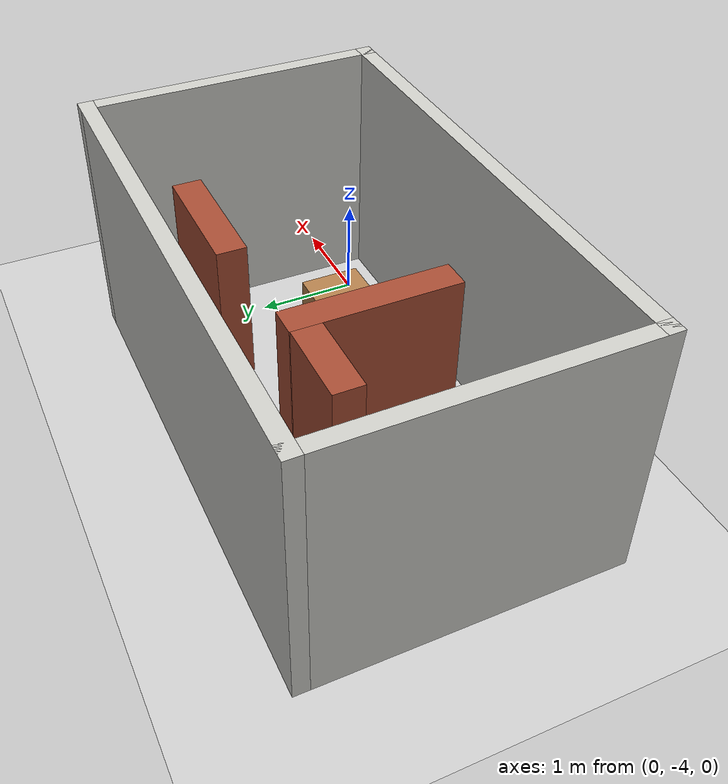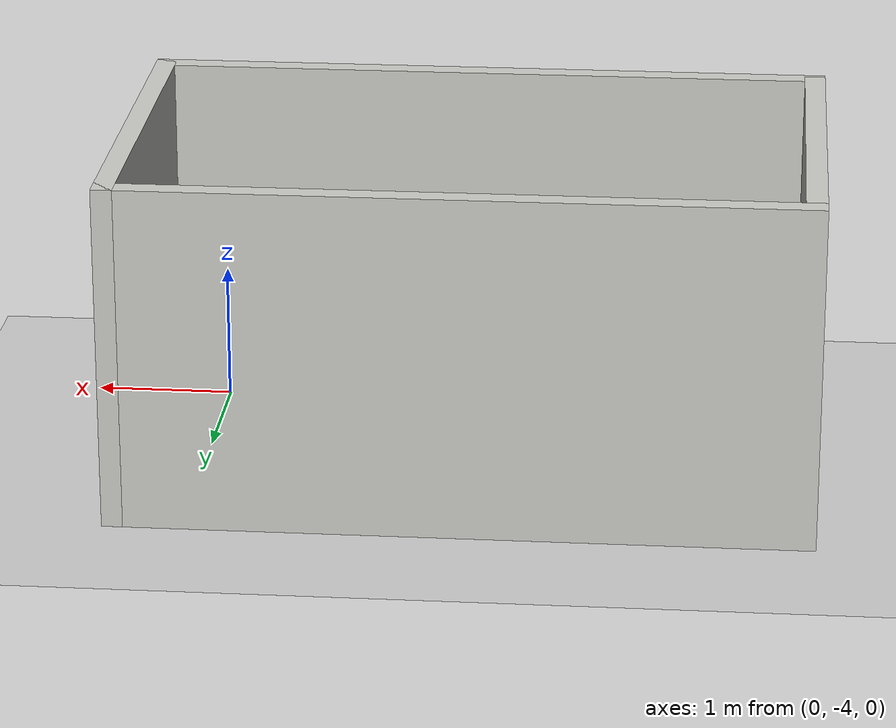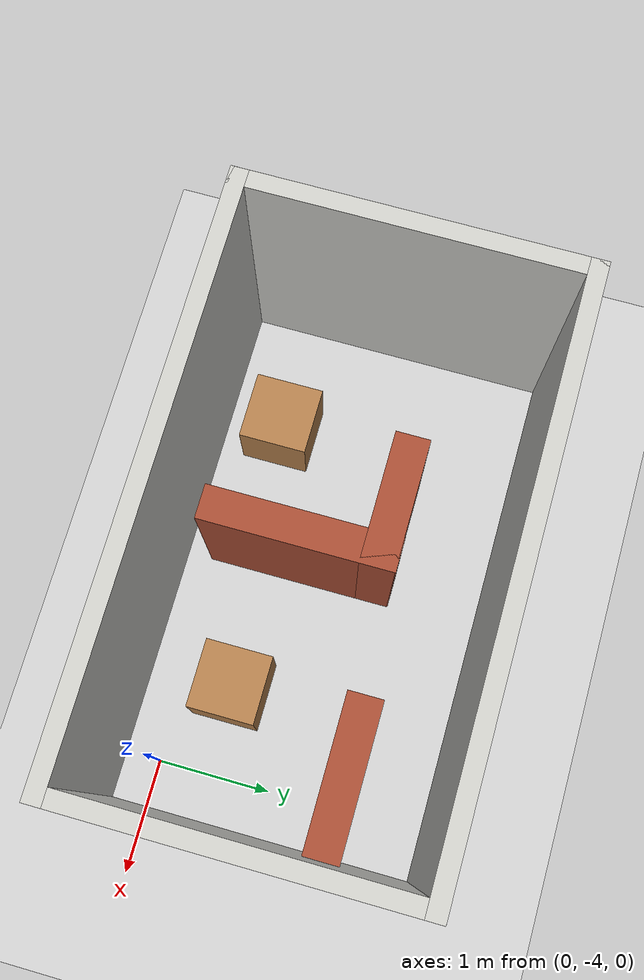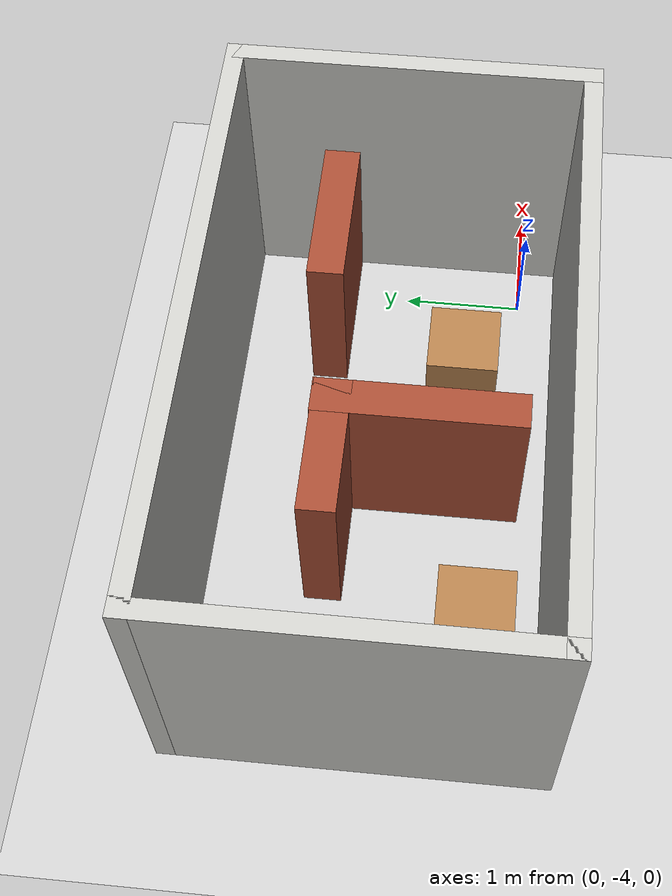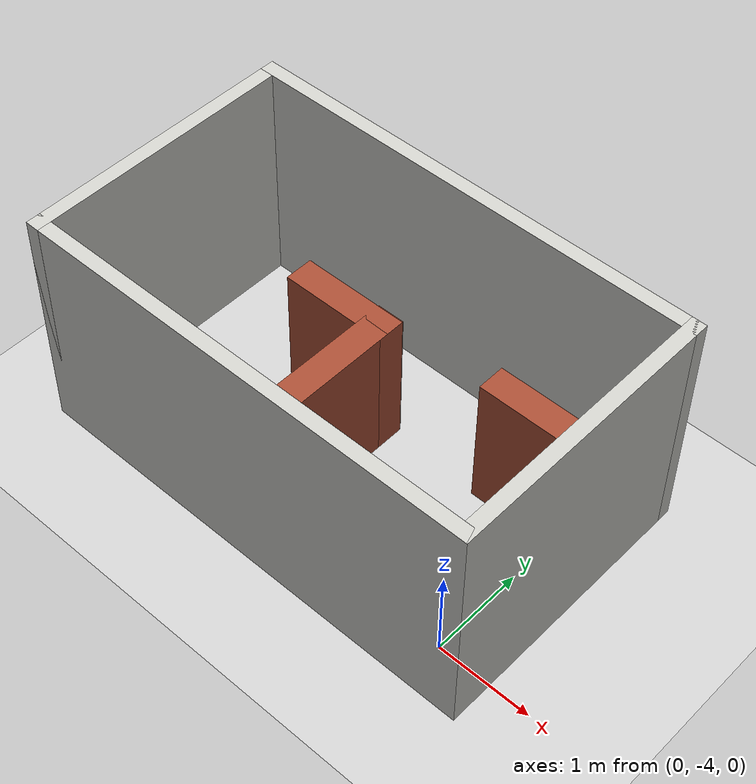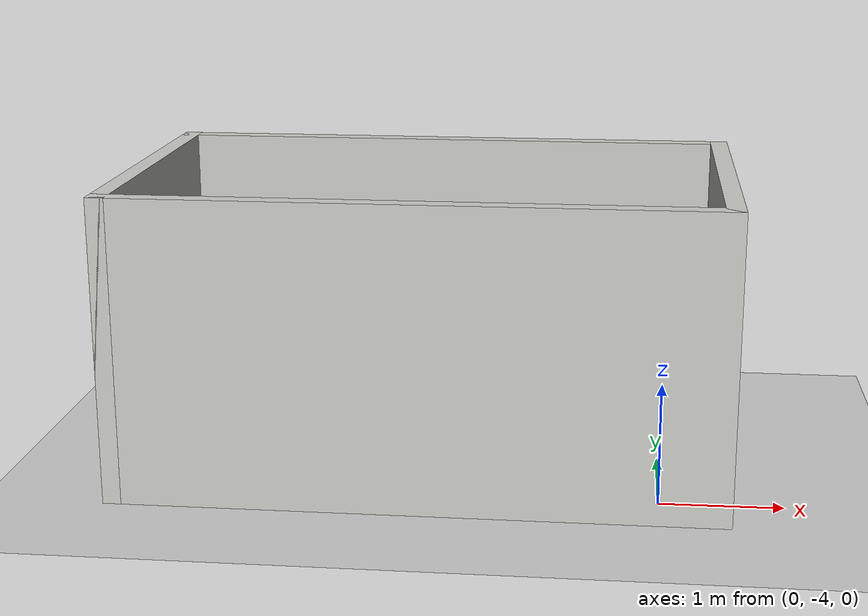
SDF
<sdf version="1.6">
 <world name="default">
  <light name="sun" type="directional">
   <pose>0 0 10 0 -0 0</pose>
   <diffuse>0.8 0.8 0.8 1</diffuse>
   <specular>0.2 0.2 0.2 1</specular>
   <attenuation>
    <range>1000</range>
    <constant>0.9</constant>
    <linear>0.01</linear>
    <quadratic>0.001</quadratic>
   </attenuation>
   <direction>-0.5 0.1 -0.9</direction>
  </light>
  <model name="ground_plane">
   <static>1</static>
   <link name="link">
    <collision name="collision">
     <geometry><plane><normal>0 0 1</normal><size>100 100</size></plane></geometry>
     <surface><friction><ode><mu>100</mu><mu2>50</mu2></ode></friction></surface>
    </collision>
    <visual name="visual">
     <cast_shadows>0</cast_shadows>
     <geometry><plane><normal>0 0 1</normal><size>100 100</size></plane></geometry>
     <material>
      <script><uri>file://media/materials/scripts/gazebo.material</uri><name>Gazebo/Grey</name></script>
     </material>
    </visual>
   </link>
  </model>
  <gravity>0 0 -9.8</gravity>
  <magnetic_field>6e-06 2.3e-05 -4.2e-05</magnetic_field>
  <atmosphere type="adiabatic"/>
  <physics name="default_physics" default="0" type="ode">
   <max_step_size>0.001</max_step_size>
   <real_time_factor>1</real_time_factor>
   <real_time_update_rate>1000</real_time_update_rate>
  </physics>
  <scene><ambient>0.4 0.4 0.4 1</ambient><background>0.7 0.7 0.7 1</background><shadows>1</shadows></scene>
  <spherical_coordinates>
   <surface_model>EARTH_WGS84</surface_model>
   <latitude_deg>0</latitude_deg>
   <longitude_deg>0</longitude_deg>
   <elevation>0</elevation>
   <heading_deg>0</heading_deg>
  </spherical_coordinates>
  <model name="env5">
   <pose>-1.935 -2.965 0 0 -0 0</pose>
   <link name="Wall_0">
    <collision name="Wall_0_Collision">
     <geometry><box><size>3 0.15 2.5</size></box></geometry>
     <pose>0 0 1.25 0 -0 0</pose>
    </collision>
    <visual name="Wall_0_Visual">
     <pose>0 0 1.25 0 -0 0</pose>
     <geometry><box><size>3 0.15 2.5</size></box></geometry>
     <material>
      <script><uri>file://media/materials/scripts/gazebo.material</uri><name>Gazebo/CeilingTiled</name></script>
      <ambient>0.760784 0.662745 0.627451 1</ambient>
     </material>
     <meta><layer>0</layer></meta>
    </visual>
    <pose>-2.425 0 0 0 0 -1.5708</pose>
   </link>
   <link name="Wall_1">
    <collision name="Wall_1_Collision">
     <geometry><box><size>5 0.15 2.5</size></box></geometry>
     <pose>0 0 1.25 0 -0 0</pose>
    </collision>
    <visual name="Wall_1_Visual">
     <pose>0 0 1.25 0 -0 0</pose>
     <geometry><box><size>5 0.15 2.5</size></box></geometry>
     <material>
      <script><uri>file://media/materials/scripts/gazebo.material</uri><name>Gazebo/CeilingTiled</name></script>
      <ambient>0.760784 0.662745 0.627451 1</ambient>
     </material>
     <meta><layer>0</layer></meta>
    </visual>
    <pose>0 -1.425 0 0 -0 0</pose>
   </link>
   <link name="Wall_13">
    <collision name="Wall_13_Collision">
     <geometry><box><size>0.61 0.6 0.6</size></box></geometry>
     <pose>0 0 0.3 0 -0 0</pose>
    </collision>
    <visual name="Wall_13_Visual">
     <pose>0 0 0.3 0 -0 0</pose>
     <geometry><box><size>0.61 0.6 0.6</size></box></geometry>
     <material>
      <script><uri>file://media/materials/scripts/gazebo.material</uri><name>Gazebo/Wood</name></script>
      <ambient>1 1 1 1</ambient>
     </material>
     <meta><layer>0</layer></meta>
    </visual>
    <pose>1.14442 -0.577004 0 0 -0 0</pose>
   </link>
   <link name="Wall_17">
    <collision name="Wall_17_Collision">
     <geometry><box><size>1.67977 0.3 1.5</size></box></geometry>
     <pose>0 0 0.75 0 -0 0</pose>
    </collision>
    <visual name="Wall_17_Visual">
     <pose>0 0 0.75 0 -0 0</pose>
     <geometry><box><size>1.67977 0.3 1.5</size></box></geometry>
     <material>
      <script><uri>file://media/materials/scripts/gazebo.material</uri><name>Gazebo/Bricks</name></script>
      <ambient>1 1 1 1</ambient>
     </material>
     <meta><layer>0</layer></meta>
    </visual>
    <pose>-0.108 -0.288114 0 0 -0 1.5708</pose>
   </link>
   <link name="Wall_18">
    <collision name="Wall_18_Collision">
     <geometry><box><size>1.15 0.3 1.5</size></box></geometry>
     <pose>0 0 0.75 0 -0 0</pose>
    </collision>
    <visual name="Wall_18_Visual">
     <pose>0 0 0.75 0 -0 0</pose>
     <geometry><box><size>1.15 0.3 1.5</size></box></geometry>
     <material>
      <script><uri>file://media/materials/scripts/gazebo.material</uri><name>Gazebo/Bricks</name></script>
      <ambient>1 1 1 1</ambient>
     </material>
     <meta><layer>0</layer></meta>
    </visual>
    <pose>-0.533 0.394212 0 0 -0 3.14159</pose>
   </link>
   <link name="Wall_2">
    <collision name="Wall_2_Collision">
     <geometry><box><size>3 0.15 2.5</size></box></geometry>
     <pose>0 0 1.25 0 -0 0</pose>
    </collision>
    <visual name="Wall_2_Visual">
     <pose>0 0 1.25 0 -0 0</pose>
     <geometry><box><size>3 0.15 2.5</size></box></geometry>
     <material>
      <script><uri>file://media/materials/scripts/gazebo.material</uri><name>Gazebo/CeilingTiled</name></script>
      <ambient>0.760784 0.662745 0.627451 1</ambient>
     </material>
     <meta><layer>0</layer></meta>
    </visual>
    <pose>2.425 0 0 0 -0 1.5708</pose>
   </link>
   <link name="Wall_20">
    <collision name="Wall_20_Collision">
     <geometry><box><size>1.40035 0.3 1.5</size></box></geometry>
     <pose>0 0 0.75 0 -0 0</pose>
    </collision>
    <visual name="Wall_20_Visual">
     <pose>0 0 0.75 0 -0 0</pose>
     <geometry><box><size>1.40035 0.3 1.5</size></box></geometry>
     <material>
      <script><uri>file://media/materials/scripts/gazebo.material</uri><name>Gazebo/Bricks</name></script>
      <ambient>1 1 1 1</ambient>
     </material>
     <meta><layer>0</layer></meta>
    </visual>
    <pose>1.742 0.58 0 0 -0 0</pose>
   </link>
   <link name="Wall_3">
    <collision name="Wall_3_Collision">
     <geometry><box><size>5 0.15 2.5</size></box></geometry>
     <pose>0 0 1.25 0 -0 0</pose>
    </collision>
    <visual name="Wall_3_Visual">
     <pose>0 0 1.25 0 -0 0</pose>
     <geometry><box><size>5 0.15 2.5</size></box></geometry>
     <material>
      <script><uri>file://media/materials/scripts/gazebo.material</uri><name>Gazebo/CeilingTiled</name></script>
      <ambient>0.760784 0.662745 0.627451 1</ambient>
     </material>
     <meta><layer>0</layer></meta>
    </visual>
    <pose>0 1.425 0 0 -0 3.14159</pose>
   </link>
   <link name="Wall_5">
    <collision name="Wall_5_Collision">
     <geometry><box><size>0.61 0.6 0.6</size></box></geometry>
     <pose>0 0 0.3 0 -0 0</pose>
    </collision>
    <visual name="Wall_5_Visual">
     <pose>0 0 0.3 0 -0 0</pose>
     <geometry><box><size>0.61 0.6 0.6</size></box></geometry>
     <material>
      <script><uri>file://media/materials/scripts/gazebo.material</uri><name>Gazebo/Wood</name></script>
      <ambient>1 1 1 1</ambient>
     </material>
     <meta><layer>0</layer></meta>
    </visual>
    <pose>-1.30379 -0.828318 0 0 0 -1.5708</pose>
   </link>
   <static>1</static>
  </model>
 </world>
</sdf>
